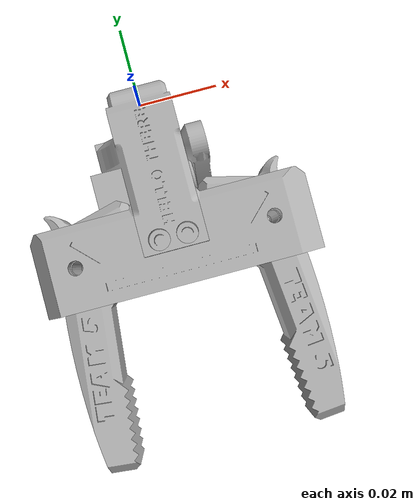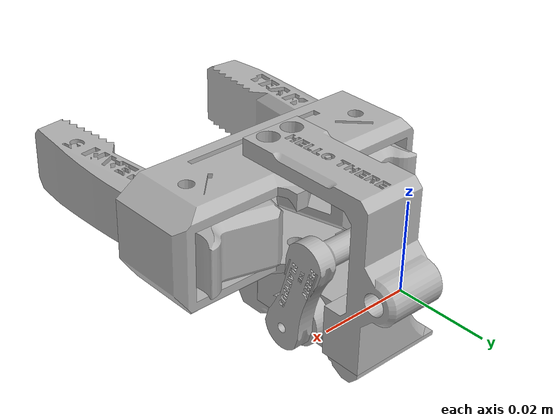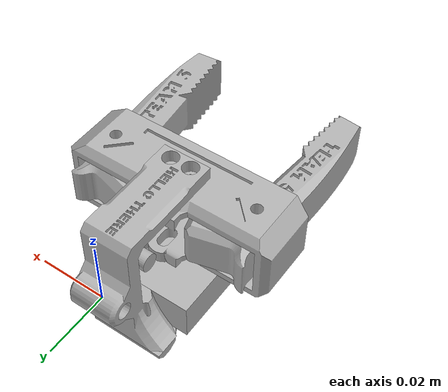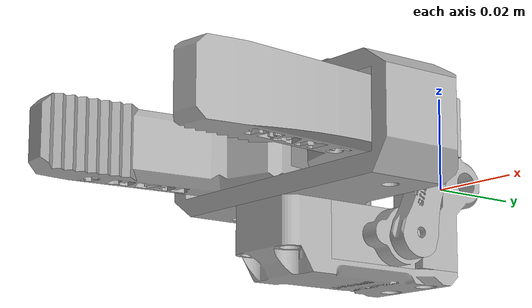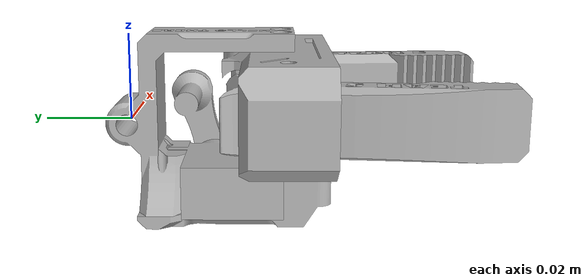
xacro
<?xml version="1.0" ?>
<robot name="simgrpgaz" xmlns:xacro="http://www.ros.org/wiki/xacro">

<xacro:include filename="$(find simgrpgaz_description)/urdf/materials.xacro" />
<xacro:include filename="$(find simgrpgaz_description)/urdf/simgrpgaz.trans" />
<xacro:include filename="$(find simgrpgaz_description)/urdf/simgrpgaz.gazebo" />

<link name="world" />

<joint name="Dummy" type="fixed">
  <parent link="world"/>
  <child link="base_link"/>
</joint>

<link name="base_link">
  <inertial>
    <origin rpy="0 0 0" xyz="1.1353520836862479e-05 -0.03608312930420336 0.004652563930069382"/>
    <mass value="0.09422333946324658"/>
    <inertia ixx="1.1e-05" ixy="0.0" ixz="0.0" iyy="5e-05" iyz="-0.0" izz="4.5e-05"/>
  </inertial>
  <visual>
    <origin rpy="0 0 0" xyz="0 0 0"/>
    <geometry>
      <mesh filename="package://simgrpgaz_description/meshes/base_link.stl" scale="0.001 0.001 0.001"/>
    </geometry>
    <material name="silver"/>
  </visual>
  <collision>
    <origin rpy="0 0 0" xyz="0 0 0"/>
    <geometry>
      <mesh filename="package://simgrpgaz_description/meshes/base_link.stl" scale="0.001 0.001 0.001"/>
    </geometry>
  </collision>
</link>

<link name="grip_arm_1">
  <inertial>
    <origin rpy="0 0 0" xyz="0.0018515751202100826 -0.013375632461518024 4.6501054292141103e-07"/>
    <mass value="0.08342484657251212"/>
    <inertia ixx="2.6e-05" ixy="-4e-06" ixz="-0.0" iyy="4e-06" iyz="-0.0" izz="2.7e-05"/>
  </inertial>
  <visual>
    <origin rpy="0 0 0" xyz="0.0235 0.03625 -0.004749"/>
    <geometry>
      <mesh filename="package://simgrpgaz_description/meshes/grip_arm_1.stl" scale="0.001 0.001 0.001"/>
    </geometry>
    <material name="silver"/>
  </visual>
  <collision>
    <origin rpy="0 0 0" xyz="0.0235 0.03625 -0.004749"/>
    <geometry>
      <mesh filename="package://simgrpgaz_description/meshes/grip_arm_1.stl" scale="0.001 0.001 0.001"/>
    </geometry>
  </collision>
</link>

<link name="grip_arm2_1">
  <inertial>
    <origin rpy="0 0 0" xyz="-0.0018722371577548844 -0.013372755968677534 4.6492549118232196e-07"/>
    <mass value="0.08342484657251212"/>
    <inertia ixx="2.6e-05" ixy="4e-06" ixz="-0.0" iyy="4e-06" iyz="0.0" izz="2.7e-05"/>
  </inertial>
  <visual>
    <origin rpy="0 0 0" xyz="-0.0235 0.03625 -0.004749"/>
    <geometry>
      <mesh filename="package://simgrpgaz_description/meshes/grip_arm2_1.stl" scale="0.001 0.001 0.001"/>
    </geometry>
    <material name="silver"/>
  </visual>
  <collision>
    <origin rpy="0 0 0" xyz="-0.0235 0.03625 -0.004749"/>
    <geometry>
      <mesh filename="package://simgrpgaz_description/meshes/grip_arm2_1.stl" scale="0.001 0.001 0.001"/>
    </geometry>
  </collision>
</link>

<link name="swivel_mount_1">
  <inertial>
    <origin rpy="0 0 0" xyz="0.002800493256251574 0.025319778743836473 -0.013846542240748032"/>
    <mass value="0.04656652043694409"/>
    <inertia ixx="1.2e-05" ixy="0.0" ixz="-0.0" iyy="9e-06" iyz="3e-06" izz="5e-06"/>
  </inertial>
  <visual>
    <origin rpy="0 0 0" xyz="0.00325 0.035 -0.016749"/>
    <geometry>
      <mesh filename="package://simgrpgaz_description/meshes/swivel_mount_1.stl" scale="0.001 0.001 0.001"/>
    </geometry>
    <material name="silver"/>
  </visual>
  <collision>
    <origin rpy="0 0 0" xyz="0.00325 0.035 -0.016749"/>
    <geometry>
      <mesh filename="package://simgrpgaz_description/meshes/swivel_mount_1.stl" scale="0.001 0.001 0.001"/>
    </geometry>
  </collision>
</link>

<link name="sg90_servo_1">
  <inertial>
    <origin rpy="0 0 0" xyz="-0.03133235365396303 0.011619667022920756 -0.01764953503198278"/>
    <mass value="0.05342056406351994"/>
    <inertia ixx="3e-06" ixy="-0.0" ixz="0.0" iyy="3e-06" iyz="-0.0" izz="5e-06"/>
  </inertial>
  <visual>
    <origin rpy="0 0 0" xyz="-0.026551 0.0355 -0.004499"/>
    <geometry>
      <mesh filename="package://simgrpgaz_description/meshes/sg90_servo_1.stl" scale="0.001 0.001 0.001"/>
    </geometry>
    <material name="silver"/>
  </visual>
  <collision>
    <origin rpy="0 0 0" xyz="-0.026551 0.0355 -0.004499"/>
    <geometry>
      <mesh filename="package://simgrpgaz_description/meshes/sg90_servo_1.stl" scale="0.001 0.001 0.001"/>
    </geometry>
  </collision>
</link>

<link name="servo_mount_1">
  <inertial>
    <origin rpy="0 0 0" xyz="-0.007413618537356836 -0.023278155183431792 0.001908684463647014"/>
    <mass value="0.03109337233353692"/>
    <inertia ixx="5e-06" ixy="-0.0" ixz="0.0" iyy="2e-06" iyz="1e-06" izz="5e-06"/>
  </inertial>
  <visual>
    <origin rpy="0 0 0" xyz="-0.0031 0.008 0.019051"/>
    <geometry>
      <mesh filename="package://simgrpgaz_description/meshes/servo_mount_1.stl" scale="0.001 0.001 0.001"/>
    </geometry>
    <material name="silver"/>
  </visual>
  <collision>
    <origin rpy="0 0 0" xyz="-0.0031 0.008 0.019051"/>
    <geometry>
      <mesh filename="package://simgrpgaz_description/meshes/servo_mount_1.stl" scale="0.001 0.001 0.001"/>
    </geometry>
  </collision>
</link>

<link name="SERVO_ARM_1">
  <inertial>
    <origin rpy="0 0 0" xyz="-0.0034039495328253254 0.0037983911480194803 0.012207195555185693"/>
    <mass value="0.009506568417112423"/>
    <inertia ixx="1e-06" ixy="0.0" ixz="0.0" iyy="1e-06" iyz="-0.0" izz="0.0"/>
  </inertial>
  <visual>
    <origin rpy="0 0 0" xyz="-0.012 0.0189 0.013151"/>
    <geometry>
      <mesh filename="package://simgrpgaz_description/meshes/SERVO_ARM_1.stl" scale="0.001 0.001 0.001"/>
    </geometry>
    <material name="silver"/>
  </visual>
  <collision>
    <origin rpy="0 0 0" xyz="-0.012 0.0189 0.013151"/>
    <geometry>
      <mesh filename="package://simgrpgaz_description/meshes/SERVO_ARM_1.stl" scale="0.001 0.001 0.001"/>
    </geometry>
  </collision>
</link>

<gazebo>
  <plugin name="gazebo_ros_control" filename="libgazebo_ros_control.so">
    <robotNamespace>/simgrpgaz</robotNamespace>
    <legacyModeNS>true</legacyModeNS>
  </plugin>
</gazebo>

<joint name="Rev1" type="continuous">
  <origin rpy="0 0 0" xyz="-0.0235 -0.03625 0.004749"/>
  <parent link="base_link"/>
  <child link="grip_arm_1"/>
  <axis xyz="0.0 0.0 -1.0"/>
</joint>

<joint name="Rev2" type="continuous">
  <origin rpy="0 0 0" xyz="0.0235 -0.03625 0.004749"/>
  <parent link="base_link"/>
  <child link="grip_arm2_1"/>
  <axis xyz="0.0 0.0 -1.0"/>
</joint>

<joint name="Rigid3" type="fixed">
  <origin rpy="0 0 0" xyz="-0.00325 -0.035 0.016749"/>
  <parent link="base_link"/>
  <child link="swivel_mount_1"/>
</joint>

<joint name="Rigid4" type="fixed">
  <origin rpy="0 0 0" xyz="0.029801 -0.0005 -0.01225"/>
  <parent link="swivel_mount_1"/>
  <child link="sg90_servo_1"/>
</joint>

<joint name="Rigid5" type="fixed">
  <origin rpy="0 0 0" xyz="0.00635 0.027 -0.0358"/>
  <parent link="swivel_mount_1"/>
  <child link="servo_mount_1"/>
</joint>

<joint name="Rev6" type="continuous">
  <origin rpy="0 0 0" xyz="-0.014551 0.0166 -0.01765"/>
  <parent link="sg90_servo_1"/>
  <child link="SERVO_ARM_1"/>
  <axis xyz="1.0 -0.0 -0.0"/>
</joint>

</robot>

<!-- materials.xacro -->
<robot name="simgrpgaz" xmlns:xacro="http://www.ros.org/wiki/xacro" >

<material name="silver">
  <color rgba="0.700 0.700 0.700 1.000"/>
</material>

</robot>

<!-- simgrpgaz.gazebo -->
<robot name="simgrpgaz" xmlns:xacro="http://www.ros.org/wiki/xacro" >

<xacro:property name="body_color" value="Gazebo/Silver" />

<gazebo>
  <plugin filename="libgazebo_ros_control.so" name="control"/>
</gazebo>
<gazebo reference="base_link">
  <material>${body_color}</material>
  <mu1>0.2</mu1>
  <mu2>0.2</mu2>
  <selfCollide>true</selfCollide>
  <gravity>true</gravity>
</gazebo>

<gazebo reference="grip_arm_1">
  <material>${body_color}</material>
  <mu1>0.2</mu1>
  <mu2>0.2</mu2>
  <selfCollide>true</selfCollide>
</gazebo>

<gazebo reference="grip_arm2_1">
  <material>${body_color}</material>
  <mu1>0.2</mu1>
  <mu2>0.2</mu2>
  <selfCollide>true</selfCollide>
</gazebo>

<gazebo reference="swivel_mount_1">
  <material>${body_color}</material>
  <mu1>0.2</mu1>
  <mu2>0.2</mu2>
  <selfCollide>true</selfCollide>
</gazebo>

<gazebo reference="sg90_servo_1">
  <material>${body_color}</material>
  <mu1>0.2</mu1>
  <mu2>0.2</mu2>
  <selfCollide>true</selfCollide>
</gazebo>

<gazebo reference="servo_mount_1">
  <material>${body_color}</material>
  <mu1>0.2</mu1>
  <mu2>0.2</mu2>
  <selfCollide>true</selfCollide>
</gazebo>

<gazebo reference="SERVO_ARM_1">
  <material>${body_color}</material>
  <mu1>0.2</mu1>
  <mu2>0.2</mu2>
  <selfCollide>true</selfCollide>
</gazebo>

</robot>
